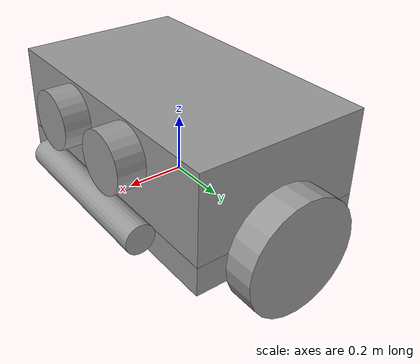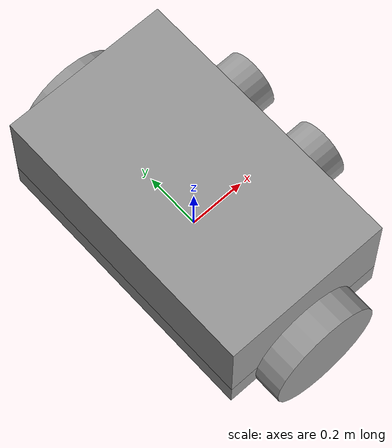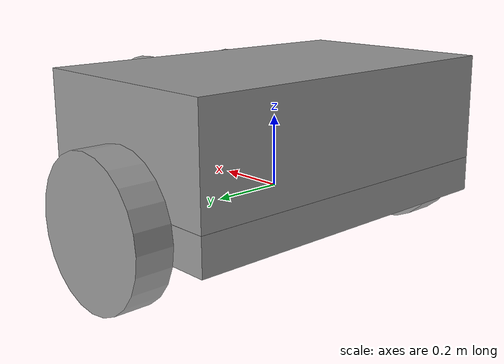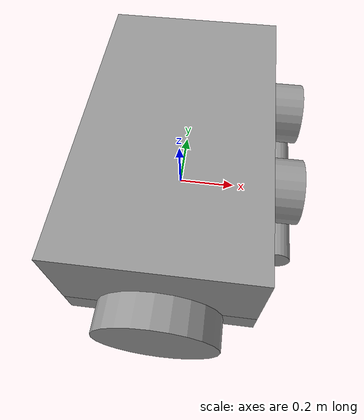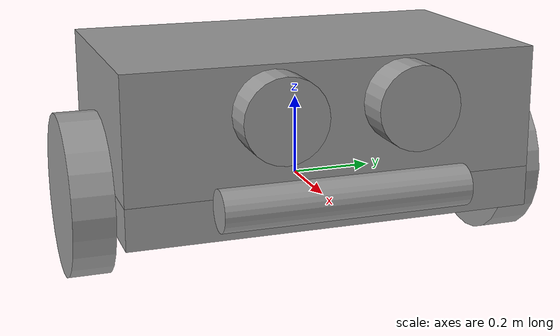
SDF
<?xml version='1.0'?>
<sdf version='1.6'>
  <model name='robot_2'>
    <link name='link_0'>
      <pose frame=''>0 0 0 -0 -0 -0</pose>
      <inertial>
        <mass>1</mass>
        <inertia>
          <ixx>0.166667</ixx>
          <ixy>0</ixy>
          <ixz>0</ixz>
          <iyy>0.166667</iyy>
          <iyz>0</iyz>
          <izz>0.166667</izz>
        </inertia>
        <pose frame=''>0 0 0 0 -0 0</pose>
      </inertial>
      <self_collide>0</self_collide>
      <kinematic>0</kinematic>
      <visual name='visual'>
        <pose frame=''>0 0 0 0 -0 0</pose>
        <geometry>
          <box>
            <size>0.6 1 0.1</size>
          </box>
        </geometry>
        <material>
          <lighting>1</lighting>
          <script>
            <uri>file://media/materials/scripts/gazebo.material</uri>
            <name>Gazebo/Grey</name>
          </script>
          <shader type='pixel'>
            <normal_map>__default__</normal_map>
          </shader>
          <ambient>0.3 0.3 0.3 1</ambient>
          <diffuse>0.7 0.7 0.7 1</diffuse>
          <specular>0.01 0.01 0.01 1</specular>
          <emissive>0 0 0 1</emissive>
        </material>
        <transparency>0</transparency>
        <cast_shadows>1</cast_shadows>
      </visual>
      <collision name='collision'>
        <laser_retro>0</laser_retro>
        <max_contacts>10</max_contacts>
        <pose frame=''>0 0 0 0 -0 0</pose>
        <geometry>
          <box>
            <size>0.6 1 0.1</size>
          </box>
        </geometry>
        <surface>
          <friction>
            <ode>
              <mu>1</mu>
              <mu2>1</mu2>
              <fdir1>0 0 0</fdir1>
              <slip1>0</slip1>
              <slip2>0</slip2>
            </ode>
            <torsional>
              <coefficient>1</coefficient>
              <patch_radius>0</patch_radius>
              <surface_radius>0</surface_radius>
              <use_patch_radius>1</use_patch_radius>
              <ode>
                <slip>0</slip>
              </ode>
            </torsional>
          </friction>
          <bounce>
            <restitution_coefficient>0</restitution_coefficient>
            <threshold>1e+06</threshold>
          </bounce>
          <contact>
            <collide_without_contact>0</collide_without_contact>
            <collide_without_contact_bitmask>1</collide_without_contact_bitmask>
            <collide_bitmask>1</collide_bitmask>
            <ode>
              <soft_cfm>0</soft_cfm>
              <soft_erp>0.2</soft_erp>
              <kp>1e+13</kp>
              <kd>1</kd>
              <max_vel>0.01</max_vel>
              <min_depth>0</min_depth>
            </ode>
            <bullet>
              <split_impulse>1</split_impulse>
              <split_impulse_penetration_threshold>-0.01</split_impulse_penetration_threshold>
              <soft_cfm>0</soft_cfm>
              <soft_erp>0.2</soft_erp>
              <kp>1e+13</kp>
              <kd>1</kd>
            </bullet>
          </contact>
        </surface>
      </collision>
    </link>
    <link name='link_1'>
      <pose frame=''>-0 -0.550019 -0 1.5707 -0 0</pose>
      <inertial>
        <mass>1</mass>
        <inertia>
          <ixx>0.145833</ixx>
          <ixy>0</ixy>
          <ixz>0</ixz>
          <iyy>0.145833</iyy>
          <iyz>0</iyz>
          <izz>0.125</izz>
        </inertia>
        <pose frame=''>0 0 0 0 -0 0</pose>
      </inertial>
      <self_collide>0</self_collide>
      <kinematic>0</kinematic>
      <visual name='visual'>
        <pose frame=''>0 0 0 0 -0 0</pose>
        <geometry>
          <cylinder>
            <radius>0.2</radius>
            <length>0.1</length>
          </cylinder>
        </geometry>
        <material>
          <lighting>1</lighting>
          <script>
            <uri>file://media/materials/scripts/gazebo.material</uri>
            <name>Gazebo/Grey</name>
          </script>
          <shader type='pixel'>
            <normal_map>__default__</normal_map>
          </shader>
          <ambient>0.3 0.3 0.3 1</ambient>
          <diffuse>0.7 0.7 0.7 1</diffuse>
          <specular>0.01 0.01 0.01 1</specular>
          <emissive>0 0 0 1</emissive>
        </material>
        <transparency>0</transparency>
        <cast_shadows>1</cast_shadows>
      </visual>
      <collision name='collision'>
        <laser_retro>0</laser_retro>
        <max_contacts>10</max_contacts>
        <pose frame=''>0 0 0 0 -0 0</pose>
        <geometry>
          <cylinder>
            <radius>0.2</radius>
            <length>0.1</length>
          </cylinder>
        </geometry>
        <surface>
          <friction>
            <ode>
              <mu>1</mu>
              <mu2>1</mu2>
              <fdir1>0 0 0</fdir1>
              <slip1>0</slip1>
              <slip2>0</slip2>
            </ode>
            <torsional>
              <coefficient>1</coefficient>
              <patch_radius>0</patch_radius>
              <surface_radius>0</surface_radius>
              <use_patch_radius>1</use_patch_radius>
              <ode>
                <slip>0</slip>
              </ode>
            </torsional>
          </friction>
          <bounce>
            <restitution_coefficient>0</restitution_coefficient>
            <threshold>1e+06</threshold>
          </bounce>
          <contact>
            <collide_without_contact>0</collide_without_contact>
            <collide_without_contact_bitmask>1</collide_without_contact_bitmask>
            <collide_bitmask>1</collide_bitmask>
            <ode>
              <soft_cfm>0</soft_cfm>
              <soft_erp>0.2</soft_erp>
              <kp>1e+13</kp>
              <kd>1</kd>
              <max_vel>0.01</max_vel>
              <min_depth>0</min_depth>
            </ode>
            <bullet>
              <split_impulse>1</split_impulse>
              <split_impulse_penetration_threshold>-0.01</split_impulse_penetration_threshold>
              <soft_cfm>0</soft_cfm>
              <soft_erp>0.2</soft_erp>
              <kp>1e+13</kp>
              <kd>1</kd>
            </bullet>
          </contact>
        </surface>
      </collision>
    </link>
    <link name='link_1_0'>
      <pose frame=''>-2.6e-05 -0 0.200078 0 0.000173 -9.4e-05</pose>
      <inertial>
        <mass>1</mass>
        <inertia>
          <ixx>0.166667</ixx>
          <ixy>0</ixy>
          <ixz>0</ixz>
          <iyy>0.166667</iyy>
          <iyz>0</iyz>
          <izz>0.166667</izz>
        </inertia>
        <pose frame=''>0 0 0 0 -0 0</pose>
      </inertial>
      <self_collide>0</self_collide>
      <kinematic>0</kinematic>
      <visual name='visual'>
        <pose frame=''>0 0 0 0 -0 0</pose>
        <geometry>
          <box>
            <size>0.6 1 0.3</size>
          </box>
        </geometry>
        <material>
          <lighting>1</lighting>
          <script>
            <uri>file://media/materials/scripts/gazebo.material</uri>
            <name>Gazebo/Grey</name>
          </script>
          <shader type='pixel'>
            <normal_map>__default__</normal_map>
          </shader>
          <ambient>0.3 0.3 0.3 1</ambient>
          <diffuse>0.7 0.7 0.7 1</diffuse>
          <specular>0.01 0.01 0.01 1</specular>
          <emissive>0 0 0 1</emissive>
        </material>
        <transparency>0</transparency>
        <cast_shadows>1</cast_shadows>
      </visual>
      <collision name='collision'>
        <laser_retro>0</laser_retro>
        <max_contacts>10</max_contacts>
        <pose frame=''>0 0 0 0 -0 0</pose>
        <geometry>
          <box>
            <size>0.6 1 0.3</size>
          </box>
        </geometry>
        <surface>
          <friction>
            <ode>
              <mu>1</mu>
              <mu2>1</mu2>
              <fdir1>0 0 0</fdir1>
              <slip1>0</slip1>
              <slip2>0</slip2>
            </ode>
            <torsional>
              <coefficient>1</coefficient>
              <patch_radius>0</patch_radius>
              <surface_radius>0</surface_radius>
              <use_patch_radius>1</use_patch_radius>
              <ode>
                <slip>0</slip>
              </ode>
            </torsional>
          </friction>
          <bounce>
            <restitution_coefficient>0</restitution_coefficient>
            <threshold>1e+06</threshold>
          </bounce>
          <contact>
            <collide_without_contact>0</collide_without_contact>
            <collide_without_contact_bitmask>1</collide_without_contact_bitmask>
            <collide_bitmask>1</collide_bitmask>
            <ode>
              <soft_cfm>0</soft_cfm>
              <soft_erp>0.2</soft_erp>
              <kp>1e+13</kp>
              <kd>1</kd>
              <max_vel>0.01</max_vel>
              <min_depth>0</min_depth>
            </ode>
            <bullet>
              <split_impulse>1</split_impulse>
              <split_impulse_penetration_threshold>-0.01</split_impulse_penetration_threshold>
              <soft_cfm>0</soft_cfm>
              <soft_erp>0.2</soft_erp>
              <kp>1e+13</kp>
              <kd>1</kd>
            </bullet>
          </contact>
        </surface>
      </collision>
    </link>
    <link name='link_1_clone'>
      <pose frame=''>0 0.550019 -0 1.5707 -0 0</pose>
      <inertial>
        <mass>1</mass>
        <inertia>
          <ixx>0.145833</ixx>
          <ixy>0</ixy>
          <ixz>0</ixz>
          <iyy>0.145833</iyy>
          <iyz>0</iyz>
          <izz>0.125</izz>
        </inertia>
        <pose frame=''>0 0 0 0 -0 0</pose>
      </inertial>
      <self_collide>0</self_collide>
      <kinematic>0</kinematic>
      <visual name='visual'>
        <pose frame=''>0 0 0 0 -0 0</pose>
        <geometry>
          <cylinder>
            <radius>0.2</radius>
            <length>0.1</length>
          </cylinder>
        </geometry>
        <material>
          <lighting>1</lighting>
          <script>
            <uri>file://media/materials/scripts/gazebo.material</uri>
            <name>Gazebo/Grey</name>
          </script>
          <shader type='pixel'>
            <normal_map>__default__</normal_map>
          </shader>
          <ambient>0.3 0.3 0.3 1</ambient>
          <diffuse>0.7 0.7 0.7 1</diffuse>
          <specular>0.01 0.01 0.01 1</specular>
          <emissive>0 0 0 1</emissive>
        </material>
        <transparency>0</transparency>
        <cast_shadows>1</cast_shadows>
      </visual>
      <collision name='collision'>
        <laser_retro>0</laser_retro>
        <max_contacts>10</max_contacts>
        <pose frame=''>0 0 0 0 -0 0</pose>
        <geometry>
          <cylinder>
            <radius>0.2</radius>
            <length>0.1</length>
          </cylinder>
        </geometry>
        <surface>
          <friction>
            <ode>
              <mu>1</mu>
              <mu2>1</mu2>
              <fdir1>0 0 0</fdir1>
              <slip1>0</slip1>
              <slip2>0</slip2>
            </ode>
            <torsional>
              <coefficient>1</coefficient>
              <patch_radius>0</patch_radius>
              <surface_radius>0</surface_radius>
              <use_patch_radius>1</use_patch_radius>
              <ode>
                <slip>0</slip>
              </ode>
            </torsional>
          </friction>
          <bounce>
            <restitution_coefficient>0</restitution_coefficient>
            <threshold>1e+06</threshold>
          </bounce>
          <contact>
            <collide_without_contact>0</collide_without_contact>
            <collide_without_contact_bitmask>1</collide_without_contact_bitmask>
            <collide_bitmask>1</collide_bitmask>
            <ode>
              <soft_cfm>0</soft_cfm>
              <soft_erp>0.2</soft_erp>
              <kp>1e+13</kp>
              <kd>1</kd>
              <max_vel>0.01</max_vel>
              <min_depth>0</min_depth>
            </ode>
            <bullet>
              <split_impulse>1</split_impulse>
              <split_impulse_penetration_threshold>-0.01</split_impulse_penetration_threshold>
              <soft_cfm>0</soft_cfm>
              <soft_erp>0.2</soft_erp>
              <kp>1e+13</kp>
              <kd>1</kd>
            </bullet>
          </contact>
        </surface>
      </collision>
    </link>
    <link name='link_6_clone'>
      <pose frame=''>0.342887 0.163126 0.243557 1.5707 3e-06 1.5707</pose>
      <inertial>
        <mass>1e-05</mass>
        <inertia>
          <ixx>0.145833</ixx>
          <ixy>0</ixy>
          <ixz>0</ixz>
          <iyy>0.145833</iyy>
          <iyz>0</iyz>
          <izz>0.125</izz>
        </inertia>
        <pose frame=''>0 0 0 0 -0 0</pose>
      </inertial>
      <self_collide>0</self_collide>
      <kinematic>0</kinematic>
      <visual name='visual'>
        <pose frame=''>0 0 0 0 -0 0</pose>
        <geometry>
          <cylinder>
            <radius>0.1</radius>
            <length>0.1</length>
          </cylinder>
        </geometry>
        <material>
          <lighting>1</lighting>
          <script>
            <uri>file://media/materials/scripts/gazebo.material</uri>
            <name>Gazebo/Grey</name>
          </script>
          <shader type='pixel'>
            <normal_map>__default__</normal_map>
          </shader>
          <ambient>0.3 0.3 0.3 1</ambient>
          <diffuse>0.7 0.7 0.7 1</diffuse>
          <specular>0.01 0.01 0.01 1</specular>
          <emissive>0 0 0 1</emissive>
        </material>
        <transparency>0</transparency>
        <cast_shadows>1</cast_shadows>
      </visual>
      <collision name='collision'>
        <laser_retro>0</laser_retro>
        <max_contacts>10</max_contacts>
        <pose frame=''>0 0 0 0 -0 0</pose>
        <geometry>
          <cylinder>
            <radius>0.1</radius>
            <length>0.1</length>
          </cylinder>
        </geometry>
        <surface>
          <friction>
            <ode>
              <mu>1</mu>
              <mu2>1</mu2>
              <fdir1>0 0 0</fdir1>
              <slip1>0</slip1>
              <slip2>0</slip2>
            </ode>
            <torsional>
              <coefficient>1</coefficient>
              <patch_radius>0</patch_radius>
              <surface_radius>0</surface_radius>
              <use_patch_radius>1</use_patch_radius>
              <ode>
                <slip>0</slip>
              </ode>
            </torsional>
          </friction>
          <bounce>
            <restitution_coefficient>0</restitution_coefficient>
            <threshold>1e+06</threshold>
          </bounce>
          <contact>
            <collide_without_contact>0</collide_without_contact>
            <collide_without_contact_bitmask>1</collide_without_contact_bitmask>
            <collide_bitmask>1</collide_bitmask>
            <ode>
              <soft_cfm>0</soft_cfm>
              <soft_erp>0.2</soft_erp>
              <kp>1e+13</kp>
              <kd>1</kd>
              <max_vel>0.01</max_vel>
              <min_depth>0</min_depth>
            </ode>
            <bullet>
              <split_impulse>1</split_impulse>
              <split_impulse_penetration_threshold>-0.01</split_impulse_penetration_threshold>
              <soft_cfm>0</soft_cfm>
              <soft_erp>0.2</soft_erp>
              <kp>1e+13</kp>
              <kd>1</kd>
            </bullet>
          </contact>
        </surface>
      </collision>
    </link>
    <link name='link_6_clone_clone'>
      <pose frame=''>0.339801 -0.152965 0.239143 1.5707 1e-06 1.5707</pose>
      <inertial>
        <mass>1e-05</mass>
        <inertia>
          <ixx>0.145833</ixx>
          <ixy>0</ixy>
          <ixz>0</ixz>
          <iyy>0.145833</iyy>
          <iyz>0</iyz>
          <izz>0.125</izz>
        </inertia>
        <pose frame=''>0 0 0 0 -0 0</pose>
      </inertial>
      <self_collide>0</self_collide>
      <kinematic>0</kinematic>
      <visual name='visual'>
        <pose frame=''>0 0 0 0 -0 0</pose>
        <geometry>
          <cylinder>
            <radius>0.1</radius>
            <length>0.1</length>
          </cylinder>
        </geometry>
        <material>
          <lighting>1</lighting>
          <script>
            <uri>file://media/materials/scripts/gazebo.material</uri>
            <name>Gazebo/Grey</name>
          </script>
          <shader type='pixel'>
            <normal_map>__default__</normal_map>
          </shader>
          <ambient>0.3 0.3 0.3 1</ambient>
          <diffuse>0.7 0.7 0.7 1</diffuse>
          <specular>0.01 0.01 0.01 1</specular>
          <emissive>0 0 0 1</emissive>
        </material>
        <transparency>0</transparency>
        <cast_shadows>1</cast_shadows>
      </visual>
      <collision name='collision'>
        <laser_retro>0</laser_retro>
        <max_contacts>10</max_contacts>
        <pose frame=''>0 0 0 0 -0 0</pose>
        <geometry>
          <cylinder>
            <radius>0.1</radius>
            <length>0.1</length>
          </cylinder>
        </geometry>
        <surface>
          <friction>
            <ode>
              <mu>1</mu>
              <mu2>1</mu2>
              <fdir1>0 0 0</fdir1>
              <slip1>0</slip1>
              <slip2>0</slip2>
            </ode>
            <torsional>
              <coefficient>1</coefficient>
              <patch_radius>0</patch_radius>
              <surface_radius>0</surface_radius>
              <use_patch_radius>1</use_patch_radius>
              <ode>
                <slip>0</slip>
              </ode>
            </torsional>
          </friction>
          <bounce>
            <restitution_coefficient>0</restitution_coefficient>
            <threshold>1e+06</threshold>
          </bounce>
          <contact>
            <collide_without_contact>0</collide_without_contact>
            <collide_without_contact_bitmask>1</collide_without_contact_bitmask>
            <collide_bitmask>1</collide_bitmask>
            <ode>
              <soft_cfm>0</soft_cfm>
              <soft_erp>0.2</soft_erp>
              <kp>1e+13</kp>
              <kd>1</kd>
              <max_vel>0.01</max_vel>
              <min_depth>0</min_depth>
            </ode>
            <bullet>
              <split_impulse>1</split_impulse>
              <split_impulse_penetration_threshold>-0.01</split_impulse_penetration_threshold>
              <soft_cfm>0</soft_cfm>
              <soft_erp>0.2</soft_erp>
              <kp>1e+13</kp>
              <kd>1</kd>
            </bullet>
          </contact>
        </surface>
      </collision>
    </link>
    <link name='link_7'>
      <pose frame=''>0.351071 -5.4e-05 0.039446 1.5707 -0 0</pose>
      <inertial>
        <mass>1e-06</mass>
        <inertia>
          <ixx>0.145833</ixx>
          <ixy>0</ixy>
          <ixz>0</ixz>
          <iyy>0.145833</iyy>
          <iyz>0</iyz>
          <izz>0.125</izz>
        </inertia>
        <pose frame=''>0 0 0 0 -0 0</pose>
      </inertial>
      <self_collide>0</self_collide>
      <kinematic>0</kinematic>
      <visual name='visual'>
        <pose frame=''>0 0 0 0 -0 0</pose>
        <geometry>
          <cylinder>
            <radius>0.05</radius>
            <length>0.6</length>
          </cylinder>
        </geometry>
        <material>
          <lighting>1</lighting>
          <script>
            <uri>file://media/materials/scripts/gazebo.material</uri>
            <name>Gazebo/Grey</name>
          </script>
          <shader type='pixel'>
            <normal_map>__default__</normal_map>
          </shader>
          <ambient>0.3 0.3 0.3 1</ambient>
          <diffuse>0.7 0.7 0.7 1</diffuse>
          <specular>0.01 0.01 0.01 1</specular>
          <emissive>0 0 0 1</emissive>
        </material>
        <transparency>0</transparency>
        <cast_shadows>1</cast_shadows>
      </visual>
      <collision name='collision'>
        <laser_retro>0</laser_retro>
        <max_contacts>10</max_contacts>
        <pose frame=''>0 0 0 0 -0 0</pose>
        <geometry>
          <cylinder>
            <radius>0.05</radius>
            <length>0.6</length>
          </cylinder>
        </geometry>
        <surface>
          <friction>
            <ode>
              <mu>1</mu>
              <mu2>1</mu2>
              <fdir1>0 0 0</fdir1>
              <slip1>0</slip1>
              <slip2>0</slip2>
            </ode>
            <torsional>
              <coefficient>1</coefficient>
              <patch_radius>0</patch_radius>
              <surface_radius>0</surface_radius>
              <use_patch_radius>1</use_patch_radius>
              <ode>
                <slip>0</slip>
              </ode>
            </torsional>
          </friction>
          <bounce>
            <restitution_coefficient>0</restitution_coefficient>
            <threshold>1e+06</threshold>
          </bounce>
          <contact>
            <collide_without_contact>0</collide_without_contact>
            <collide_without_contact_bitmask>1</collide_without_contact_bitmask>
            <collide_bitmask>1</collide_bitmask>
            <ode>
              <soft_cfm>0</soft_cfm>
              <soft_erp>0.2</soft_erp>
              <kp>1e+13</kp>
              <kd>1</kd>
              <max_vel>0.01</max_vel>
              <min_depth>0</min_depth>
            </ode>
            <bullet>
              <split_impulse>1</split_impulse>
              <split_impulse_penetration_threshold>-0.01</split_impulse_penetration_threshold>
              <soft_cfm>0</soft_cfm>
              <soft_erp>0.2</soft_erp>
              <kp>1e+13</kp>
              <kd>1</kd>
            </bullet>
          </contact>
        </surface>
      </collision>
    </link>
    <joint name='link_0_JOINT_0' type='revolute'>
      <parent>link_0</parent>
      <child>link_1_clone</child>
      <pose frame=''>0 0 0 0 -0 0</pose>
      <axis>
        <xyz>0 0 1</xyz>
        <use_parent_model_frame>0</use_parent_model_frame>
        <limit>
          <lower>-1.79769e+308</lower>
          <upper>1.79769e+308</upper>
          <effort>-1</effort>
          <velocity>-1</velocity>
        </limit>
        <dynamics>
          <spring_reference>0</spring_reference>
          <spring_stiffness>0</spring_stiffness>
          <damping>0</damping>
          <friction>0</friction>
        </dynamics>
      </axis>
      <physics>
        <ode>
          <limit>
            <cfm>0</cfm>
            <erp>0.2</erp>
          </limit>
          <suspension>
            <cfm>0</cfm>
            <erp>0.2</erp>
          </suspension>
        </ode>
      </physics>
    </joint>
    <joint name='link_0_JOINT_1' type='revolute'>
      <parent>link_0</parent>
      <child>link_1</child>
      <pose frame=''>0 0 0 0 -0 0</pose>
      <axis>
        <xyz>0 0 1</xyz>
        <use_parent_model_frame>0</use_parent_model_frame>
        <limit>
          <lower>-1.79769e+308</lower>
          <upper>1.79769e+308</upper>
          <effort>-1</effort>
          <velocity>-1</velocity>
        </limit>
        <dynamics>
          <spring_reference>0</spring_reference>
          <spring_stiffness>0</spring_stiffness>
          <damping>0</damping>
          <friction>0</friction>
        </dynamics>
      </axis>
      <physics>
        <ode>
          <limit>
            <cfm>0</cfm>
            <erp>0.2</erp>
          </limit>
          <suspension>
            <cfm>0</cfm>
            <erp>0.2</erp>
          </suspension>
        </ode>
      </physics>
    </joint>
    <joint name='link_0_JOINT_3' type='fixed'>
      <parent>link_0</parent>
      <child>link_1_0</child>
      <pose frame=''>0 0 -0 0 -0 0</pose>
      <physics>
        <ode>
          <limit>
            <cfm>0</cfm>
            <erp>0.2</erp>
          </limit>
          <suspension>
            <cfm>0</cfm>
            <erp>0.2</erp>
          </suspension>
        </ode>
      </physics>
    </joint>
    <joint name='link_1_0_JOINT_7' type='fixed'>
      <parent>link_1_0</parent>
      <child>link_6_clone_clone</child>
      <pose frame=''>0 0 0 0 -0 0</pose>
      <physics>
        <ode>
          <limit>
            <cfm>0</cfm>
            <erp>0.2</erp>
          </limit>
          <suspension>
            <cfm>0</cfm>
            <erp>0.2</erp>
          </suspension>
        </ode>
      </physics>
    </joint>
    <joint name='link_1_0_JOINT_8' type='fixed'>
      <parent>link_1_0</parent>
      <child>link_6_clone</child>
      <pose frame=''>0 0 0 0 -0 0</pose>
      <physics>
        <ode>
          <limit>
            <cfm>0</cfm>
            <erp>0.2</erp>
          </limit>
          <suspension>
            <cfm>0</cfm>
            <erp>0.2</erp>
          </suspension>
        </ode>
      </physics>
    </joint>
    <joint name='link_1_0_JOINT_9' type='fixed'>
      <parent>link_1_0</parent>
      <child>link_7</child>
      <pose frame=''>0 0 0 0 -0 0</pose>
      <physics>
        <ode>
          <limit>
            <cfm>0</cfm>
            <erp>0.2</erp>
          </limit>
          <suspension>
            <cfm>0</cfm>
            <erp>0.2</erp>
          </suspension>
        </ode>
      </physics>
    </joint>
    <static>0</static>
    <allow_auto_disable>1</allow_auto_disable>
  </model>
</sdf>
